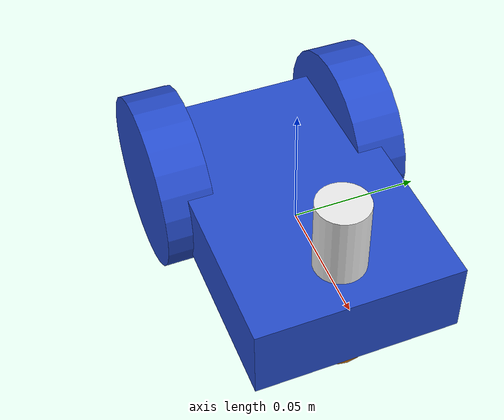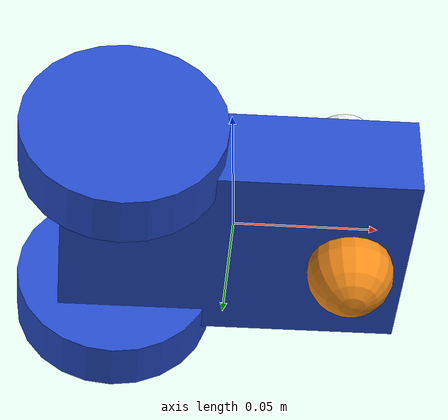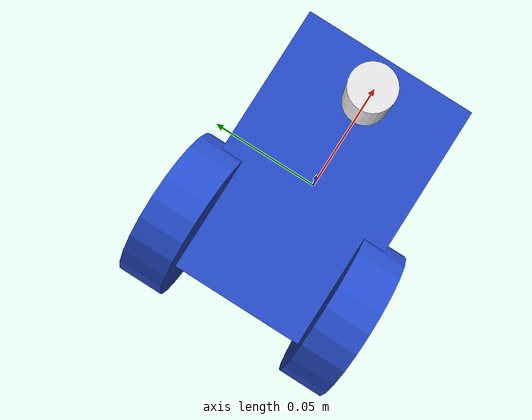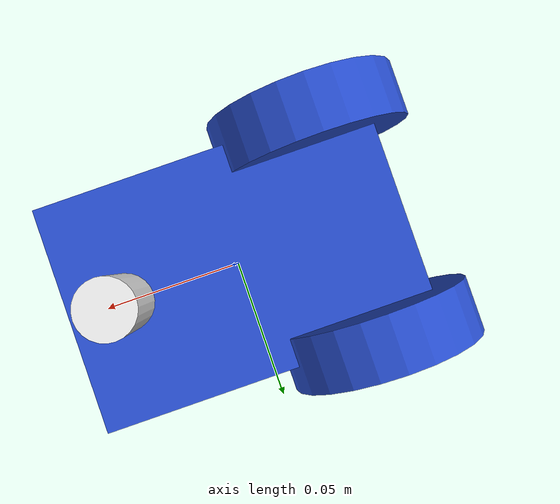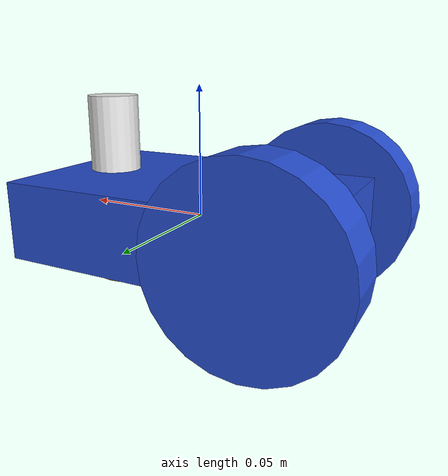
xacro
<?xml version="1.0" ?>

<robot name="m2wr" xmlns:xacro="https://www.ros.org/wiki/xacro" >

  <xacro:include filename="$(find m2wr_description)/urdf/materials.xacro" />
  <xacro:include filename="$(find m2wr_description)/urdf/m2wr.gazebo" />
  <xacro:include filename="$(find m2wr_description)/urdf/macro.xacro" />

  <link name="link_chassis">
    <!-- pose and inertial -->
    <pose>0 0 0.1 0 0 0</pose>

    <inertial>
      <mass value="5"/>
      <origin rpy="0 0 0" xyz="0 0 0"/>
      <xacro:box_inertia m="5" x="0.12" y="0.08" z="0.03" />
    </inertial>

    <collision name="collision_chassis">
      <geometry>
        <box size="0.12 0.08 0.03"/>
      </geometry>
    </collision>

    <visual>
      <origin rpy="0 0 0" xyz="0 0 0"/>
      <geometry>
        <box size="0.12 0.08 0.03"/>
      </geometry>
      <material name="blue"/>
    </visual>

    <inertial name="caster_fron_inertial">
      <mass value="1"/>
      <origin rpy="0 0 0" xyz="0 0 0"/>
      <xacro:sphere_inertia m="1" r="0.015" />
    </inertial>
    <!-- caster front -->
    <collision name="caster_front_collision">
      <origin rpy=" 0 0 0" xyz="0.04 0 -0.02"/>
      <geometry>
        <sphere radius="0.015"/>
      </geometry>
      <surface>
        <friction>
          <ode>
            <mu>0</mu>
            <mu2>0</mu2>
            <slip1>1.0</slip1>
            <slip2>1.0</slip2>
             <fdir1>0 1.0 0</fdir1>
        <implicit_spring_damper>true</implicit_spring_damper>
          </ode>
        </friction>
      </surface>
    </collision>
    <visual name="caster_front_visual">
      <origin rpy=" 0 0 0" xyz="0.04 0 -0.02"/>
      <geometry>
        <sphere radius="0.015"/>
      </geometry>
    </visual>

    </link>

  <!-- Create wheel right -->

  <xacro:link_wheel name="link_left_wheel" />

  <!--   Joint for right wheel  -->
  <xacro:joint_wheel name="joint_right_wheel"  child="link_right_wheel"  origin_xyz="-0.04 -0.04 0"  />>

  <!-- Left Wheel link -->

  <xacro:link_wheel name="link_right_wheel" />

  <!--   Joint for left wheel  -->
  <xacro:joint_wheel name="joint_left_wheel"   child="link_left_wheel"   origin_xyz="-0.04 0.04 0"  />

   <link name="sensor_laser">
    <inertial>
      <origin xyz="0 0 0" rpy="0 0 0" />
      <mass value="1" />
      <!-- RANDOM INERTIA BELOW -->
      <xacro:cylinder_inertia mass="1" r="0.01" l="0.03" />
    </inertial>

    <visual>
      <origin xyz="0 0 0" rpy="0 0 0" />
      <geometry>
        <cylinder radius="0.01" length="0.03"/>
      </geometry>
      <material name="white" />
    </visual>

    <collision>
      <origin xyz="0 0 0" rpy="0 0 0"/>
      <geometry>
        <cylinder radius="0.01" length="0.03"/>
      </geometry>
    </collision>
  </link>

  <joint name="joint_sensor_laser" type="fixed">
    <origin xyz="0.04 0 0.03" rpy="0 0 0"/>
    <parent link="link_chassis"/>
    <child link="sensor_laser"/>
  </joint>

</robot>

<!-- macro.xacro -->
<robot xmlns:xacro="http://www.ros.org/wiki/xacro">
  <xacro:macro name="link_wheel" params="name">
    <link name="${name}">
        <inertial>
          <mass value="0.2"/>
          <origin rpy="0 1.5707 1.5707" xyz="0 0 0"/>
          <xacro:cylinder_inertia mass="0.2" r="0.035" l="0.02" />
        </inertial>
        <collision name="link_right_wheel_collision">
          <origin rpy="0 1.5707 1.5707" xyz="0 0 0"/>
          <geometry>
            <cylinder length="0.02" radius="0.035"/>
          </geometry>
        </collision>
        <visual name="${name}_visual">
          <origin rpy="0 1.5707 1.5707" xyz="0 0 0"/>
          <geometry>
            <cylinder length="0.02" radius="0.035"/>
          </geometry>
        </visual>
      </link>
  </xacro:macro>

  <xacro:macro name="joint_wheel" params="name child origin_xyz">
    <joint name="${name}" type="continuous">
      <origin rpy="0 0 0" xyz="${origin_xyz}"/>
      <child link="${child}"/>
      <parent link="link_chassis"/>
      <axis rpy="0 0 0" xyz="0 1 0"/>
      <limit effort="10000" velocity="1000"/>
      <joint_properties damping="1.0" friction="1.0"/>
    </joint>
  </xacro:macro>

  <xacro:macro name="cylinder_inertia" params="mass r l">
    <inertia ixx="${mass*(3*r*r+l*l)/12}" ixy = "0" ixz = "0"
                iyy="${mass*(3*r*r+l*l)/12}" iyz = "0" izz="${mass*(r*r)/2}" />
</xacro:macro>

<xacro:macro name="box_inertia" params="m x y z">
        <inertia  ixx="${m*(y*y+z*z)/12}" ixy = "0" ixz = "0"
                  iyy="${m*(x*x+z*z)/12}" iyz = "0"
                  izz="${m*(x*x+z*z)/12}" />
</xacro:macro>

<xacro:macro name="sphere_inertia" params="m r">
        <inertia  ixx="${2*m*r*r/5}" ixy = "0" ixz = "0"
                  iyy="${2*m*r*r/5}" iyz = "0"
                  izz="${2*m*r*r/5}" />
</xacro:macro>

</robot>
